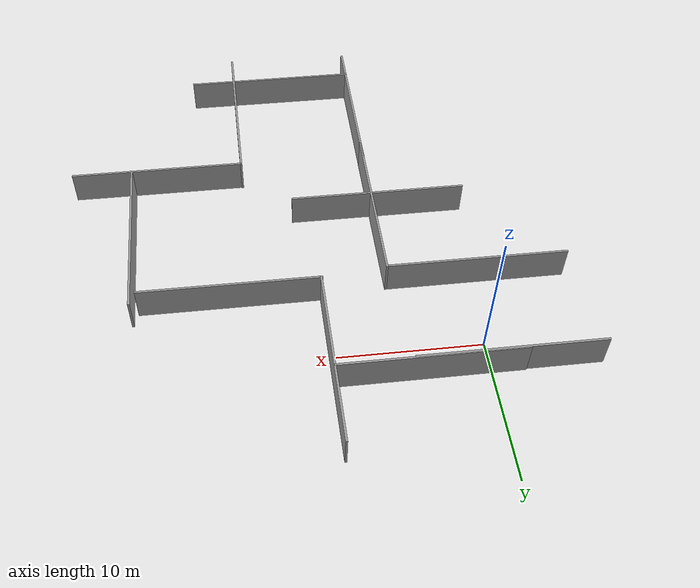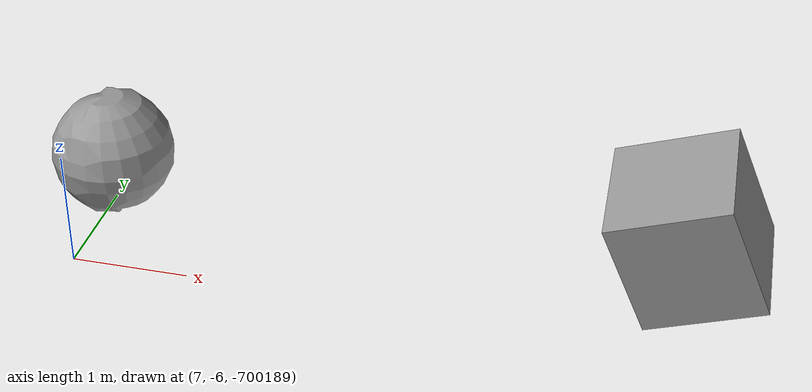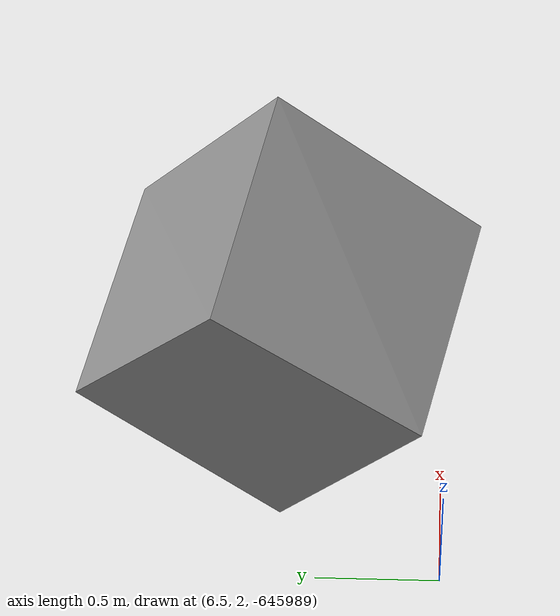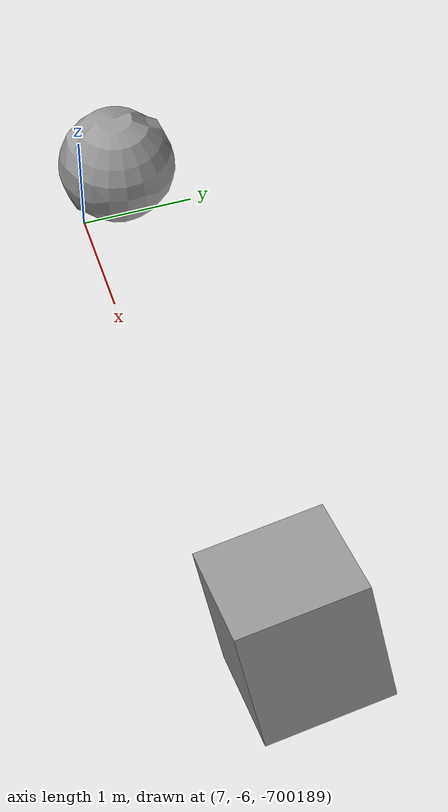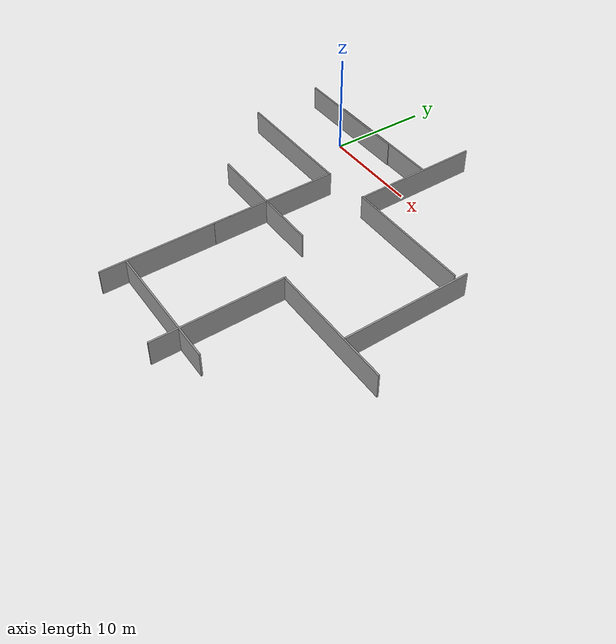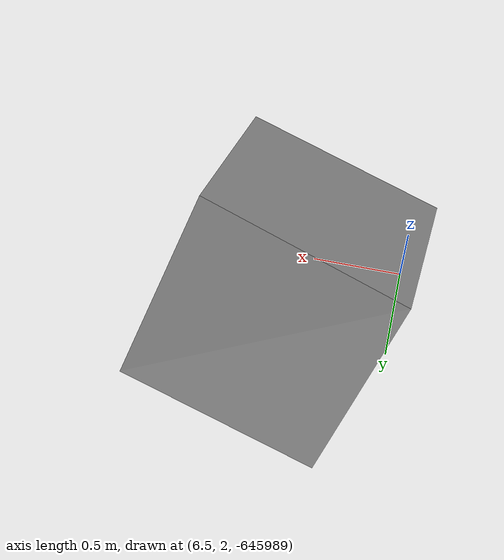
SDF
<sdf version="1.6">
 <world name="default">
  <light name="sun" type="directional">
   <pose>0 0 10 0 -0 0</pose>
   <diffuse>0.8 0.8 0.8 1</diffuse>
   <specular>0.2 0.2 0.2 1</specular>
   <attenuation>
    <range>1000</range>
    <constant>0.9</constant>
    <linear>0.01</linear>
    <quadratic>0.001</quadratic>
   </attenuation>
   <direction>-0.5 0.1 -0.9</direction>
  </light>
  <gravity>0 0 -9.8</gravity>
  <magnetic_field>6e-06 2.3e-05 -4.2e-05</magnetic_field>
  <atmosphere type="adiabatic"/>
  <physics name="default_physics" default="0" type="ode">
   <max_step_size>0.001</max_step_size>
   <real_time_factor>1</real_time_factor>
   <real_time_update_rate>1000</real_time_update_rate>
  </physics>
  <scene><ambient>0.4 0.4 0.4 1</ambient><background>0.7 0.7 0.7 1</background><shadows>1</shadows></scene>
  <spherical_coordinates>
   <surface_model>EARTH_WGS84</surface_model>
   <latitude_deg>0</latitude_deg>
   <longitude_deg>0</longitude_deg>
   <elevation>0</elevation>
   <heading_deg>0</heading_deg>
  </spherical_coordinates>
  <model name="walluse">
   <pose>-0.573859 -5.52665 0 0 -0 0</pose>
   <link name="Wall_0">
    <collision name="Wall_0_Collision">
     <geometry><box><size>12.75 0.15 2.5</size></box></geometry>
     <pose>0 0 1.25 0 -0 0</pose>
    </collision>
    <visual name="Wall_0_Visual">
     <pose>0 0 1.25 0 -0 0</pose>
     <geometry><box><size>12.75 0.15 2.5</size></box></geometry>
     <material>
      <script><uri>file://media/materials/scripts/gazebo.material</uri><name>Gazebo/Grey</name></script>
      <ambient>1 1 1 1</ambient>
     </material>
     <meta><layer>0</layer></meta>
    </visual>
   </link>
   <static>1</static>
  </model>
  <model name="walluse_clone">
   <pose>-1.1637 2.08857 0 0 -0 0</pose>
   <link name="Wall_0">
    <collision name="Wall_0_Collision">
     <geometry><box><size>12.75 0.15 2.5</size></box></geometry>
     <pose>0 0 1.25 0 -0 0</pose>
    </collision>
    <visual name="Wall_0_Visual">
     <pose>0 0 1.25 0 -0 0</pose>
     <geometry><box><size>12.75 0.15 2.5</size></box></geometry>
     <material>
      <script><uri>file://media/materials/scripts/gazebo.material</uri><name>Gazebo/Grey</name></script>
      <ambient>1 1 1 1</ambient>
     </material>
     <meta><layer>0</layer></meta>
    </visual>
   </link>
   <static>1</static>
  </model>
  <model name="walluse_clone_1_clone">
   <pose>21.5471 -16.7974 0 0 -0 0</pose>
   <link name="Wall_0">
    <collision name="Wall_0_Collision">
     <geometry><box><size>12.75 0.15 2.5</size></box></geometry>
     <pose>0 0 1.25 0 -0 0</pose>
    </collision>
    <visual name="Wall_0_Visual">
     <pose>0 0 1.25 0 -0 0</pose>
     <geometry><box><size>12.75 0.15 2.5</size></box></geometry>
     <material>
      <script><uri>file://media/materials/scripts/gazebo.material</uri><name>Gazebo/Grey</name></script>
      <ambient>1 1 1 1</ambient>
     </material>
     <meta><layer>0</layer></meta>
    </visual>
   </link>
   <static>1</static>
  </model>
  <model name="walluse_clone_0_clone_clone">
   <pose>10.3812 1.2549 0 0 -0 1.57672</pose>
   <link name="Wall_0">
    <collision name="Wall_0_Collision">
     <geometry><box><size>12.75 0.15 2.5</size></box></geometry>
     <pose>0 0 1.25 0 -0 0</pose>
    </collision>
    <visual name="Wall_0_Visual">
     <pose>0 0 1.25 0 -0 0</pose>
     <geometry><box><size>12.75 0.15 2.5</size></box></geometry>
     <material>
      <script><uri>file://media/materials/scripts/gazebo.material</uri><name>Gazebo/Grey</name></script>
      <ambient>1 1 1 1</ambient>
     </material>
     <meta><layer>0</layer></meta>
    </visual>
   </link>
   <static>1</static>
  </model>
  <model name="walluse_clone_1_clone_clone_0">
   <pose>16.6868 -5.05617 0 0 -0 0</pose>
   <link name="Wall_0">
    <collision name="Wall_0_Collision">
     <geometry><box><size>12.75 0.15 2.5</size></box></geometry>
     <pose>0 0 1.25 0 -0 0</pose>
    </collision>
    <visual name="Wall_0_Visual">
     <pose>0 0 1.25 0 -0 0</pose>
     <geometry><box><size>12.75 0.15 2.5</size></box></geometry>
     <material>
      <script><uri>file://media/materials/scripts/gazebo.material</uri><name>Gazebo/Grey</name></script>
      <ambient>1 1 1 1</ambient>
     </material>
     <meta><layer>0</layer></meta>
    </visual>
   </link>
   <static>1</static>
  </model>
  <model name="walluse_clone_0_clone_0">
   <pose>5.85185 -11.8072 0 0 -0 1.57672</pose>
   <link name="Wall_0">
    <collision name="Wall_0_Collision">
     <geometry><box><size>12.75 0.15 2.5</size></box></geometry>
     <pose>0 0 1.25 0 -0 0</pose>
    </collision>
    <visual name="Wall_0_Visual">
     <pose>0 0 1.25 0 -0 0</pose>
     <geometry><box><size>12.75 0.15 2.5</size></box></geometry>
     <material>
      <script><uri>file://media/materials/scripts/gazebo.material</uri><name>Gazebo/Grey</name></script>
      <ambient>1 1 1 1</ambient>
     </material>
     <meta><layer>0</layer></meta>
    </visual>
   </link>
   <static>1</static>
  </model>
  <model name="walluse_clone_0_clone_0_clone">
   <pose>23.4569 -10.4273 0 0 -0 1.57672</pose>
   <link name="Wall_0">
    <collision name="Wall_0_Collision">
     <geometry><box><size>12.75 0.15 2.5</size></box></geometry>
     <pose>0 0 1.25 0 -0 0</pose>
    </collision>
    <visual name="Wall_0_Visual">
     <pose>0 0 1.25 0 -0 0</pose>
     <geometry><box><size>12.75 0.15 2.5</size></box></geometry>
     <material>
      <script><uri>file://media/materials/scripts/gazebo.material</uri><name>Gazebo/Grey</name></script>
      <ambient>1 1 1 1</ambient>
     </material>
     <meta><layer>0</layer></meta>
    </visual>
   </link>
   <static>1</static>
  </model>
  <model name="walluse_clone_1_clone_0">
   <pose>5.37371 -12.6507 0 0 -0 0</pose>
   <link name="Wall_0">
    <collision name="Wall_0_Collision">
     <geometry><box><size>12.75 0.15 2.5</size></box></geometry>
     <pose>0 0 1.25 0 -0 0</pose>
    </collision>
    <visual name="Wall_0_Visual">
     <pose>0 0 1.25 0 -0 0</pose>
     <geometry><box><size>12.75 0.15 2.5</size></box></geometry>
     <material>
      <script><uri>file://media/materials/scripts/gazebo.material</uri><name>Gazebo/Grey</name></script>
      <ambient>1 1 1 1</ambient>
     </material>
     <meta><layer>0</layer></meta>
    </visual>
   </link>
   <static>1</static>
  </model>
  <model name="walluse_clone_0_clone_0_clone_clone">
   <pose>15.2744 -23.063 0 0 -0 1.57672</pose>
   <link name="Wall_0">
    <collision name="Wall_0_Collision">
     <geometry><box><size>12.75 0.15 2.5</size></box></geometry>
     <pose>0 0 1.25 0 -0 0</pose>
    </collision>
    <visual name="Wall_0_Visual">
     <pose>0 0 1.25 0 -0 0</pose>
     <geometry><box><size>12.75 0.15 2.5</size></box></geometry>
     <material>
      <script><uri>file://media/materials/scripts/gazebo.material</uri><name>Gazebo/Grey</name></script>
      <ambient>1 1 1 1</ambient>
     </material>
     <meta><layer>0</layer></meta>
    </visual>
   </link>
   <static>1</static>
  </model>
  <model name="walluse_clone_1_clone_clone_0_clone_clone">
   <pose>4.04118 2.15944 0 0 -0 0</pose>
   <link name="Wall_0">
    <collision name="Wall_0_Collision">
     <geometry><box><size>12.75 0.15 2.5</size></box></geometry>
     <pose>0 0 1.25 0 -0 0</pose>
    </collision>
    <visual name="Wall_0_Visual">
     <pose>0 0 1.25 0 -0 0</pose>
     <geometry><box><size>12.75 0.15 2.5</size></box></geometry>
     <material>
      <script><uri>file://media/materials/scripts/gazebo.material</uri><name>Gazebo/Grey</name></script>
      <ambient>1 1 1 1</ambient>
     </material>
     <meta><layer>0</layer></meta>
    </visual>
   </link>
   <static>1</static>
  </model>
  <model name="walluse_clone_0_clone_0_clone_0">
   <pose>5.90775 -22.8551 0 0 -0 1.57672</pose>
   <link name="Wall_0">
    <collision name="Wall_0_Collision">
     <geometry><box><size>12.75 0.15 2.5</size></box></geometry>
     <pose>0 0 1.25 0 -0 0</pose>
    </collision>
    <visual name="Wall_0_Visual">
     <pose>0 0 1.25 0 -0 0</pose>
     <geometry><box><size>12.75 0.15 2.5</size></box></geometry>
     <material>
      <script><uri>file://media/materials/scripts/gazebo.material</uri><name>Gazebo/Grey</name></script>
      <ambient>1 1 1 1</ambient>
     </material>
     <meta><layer>0</layer></meta>
    </visual>
   </link>
   <static>1</static>
  </model>
  <model name="walluse_clone_1_clone_1">
   <pose>12.2624 -26.722 0 0 -0 0</pose>
   <link name="Wall_0">
    <collision name="Wall_0_Collision">
     <geometry><box><size>12.75 0.15 2.5</size></box></geometry>
     <pose>0 0 1.25 0 -0 0</pose>
    </collision>
    <visual name="Wall_0_Visual">
     <pose>0 0 1.25 0 -0 0</pose>
     <geometry><box><size>12.75 0.15 2.5</size></box></geometry>
     <material>
      <script><uri>file://media/materials/scripts/gazebo.material</uri><name>Gazebo/Grey</name></script>
      <ambient>1 1 1 1</ambient>
     </material>
     <meta><layer>0</layer></meta>
    </visual>
   </link>
   <static>1</static>
  </model>
  <model name="unit_sphere_0">
   <pose>7.3573 -5.7608 -700188 0.002864 -0.071092 -0.080185</pose>
   <link name="link">
    <inertial>
     <mass>1</mass>
     <inertia><ixx>0.1</ixx><ixy>0</ixy><ixz>0</ixz><iyy>0.1</iyy><iyz>0</iyz><izz>0.1</izz></inertia>
    </inertial>
    <collision name="collision"><geometry><sphere><radius>0.5</radius></sphere></geometry></collision>
    <visual name="visual">
     <geometry><sphere><radius>0.5</radius></sphere></geometry>
     <material>
      <script><name>Gazebo/Grey</name><uri>file://media/materials/scripts/gazebo.material</uri></script>
     </material>
    </visual>
   </link>
  </model>
  <model name="unit_box_0">
   <pose>7.04793 2.66233 -645988 -0.920733 -0.214089 -0.230618</pose>
   <link name="link">
    <inertial>
     <mass>1</mass>
     <inertia>
      <ixx>0.166667</ixx>
      <ixy>0</ixy>
      <ixz>0</ixz>
      <iyy>0.166667</iyy>
      <iyz>0</iyz>
      <izz>0.166667</izz>
     </inertia>
    </inertial>
    <collision name="collision"><geometry><box><size>1 1 1</size></box></geometry></collision>
    <visual name="visual">
     <geometry><box><size>1 1 1</size></box></geometry>
     <material>
      <script><name>Gazebo/Grey</name><uri>file://media/materials/scripts/gazebo.material</uri></script>
     </material>
    </visual>
   </link>
  </model>
  <model name="unit_box_0_clone">
   <pose>12.0653 -5.78264 -700188 0.129495 -0.365641 0.005233</pose>
   <link name="link">
    <inertial>
     <mass>1</mass>
     <inertia>
      <ixx>0.166667</ixx>
      <ixy>0</ixy>
      <ixz>0</ixz>
      <iyy>0.166667</iyy>
      <iyz>0</iyz>
      <izz>0.166667</izz>
     </inertia>
    </inertial>
    <collision name="collision"><geometry><box><size>1 1 1</size></box></geometry></collision>
    <visual name="visual">
     <geometry><box><size>1 1 1</size></box></geometry>
     <material>
      <script><name>Gazebo/Grey</name><uri>file://media/materials/scripts/gazebo.material</uri></script>
     </material>
    </visual>
   </link>
  </model>
 </world>
</sdf>
